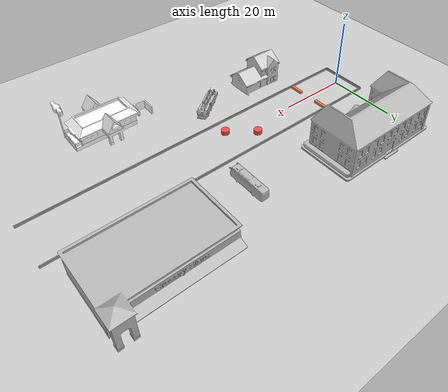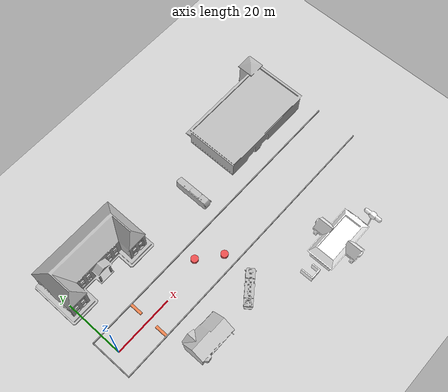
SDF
<sdf version="1.6">
 <world name="default">
  <light name="sun" type="directional">
   <pose>0 0 10 0 -0 0</pose>
   <diffuse>0.8 0.8 0.8 1</diffuse>
   <specular>0.2 0.2 0.2 1</specular>
   <attenuation>
    <range>1000</range>
    <constant>0.9</constant>
    <linear>0.01</linear>
    <quadratic>0.001</quadratic>
   </attenuation>
   <direction>-0.5 0.1 -0.9</direction>
   <spot><inner_angle>0</inner_angle><outer_angle>0</outer_angle><falloff>0</falloff></spot>
  </light>
  <model name="ground_plane">
   <static>1</static>
   <link name="link">
    <collision name="collision">
     <geometry><plane><normal>0 0 1</normal><size>100 100</size></plane></geometry>
     <surface>
      <contact><collide_bitmask>65535</collide_bitmask></contact>
      <friction><ode><mu>100</mu><mu2>50</mu2></ode></friction>
     </surface>
    </collision>
    <visual name="visual">
     <cast_shadows>0</cast_shadows>
     <geometry><plane><normal>0 0 1</normal><size>100 100</size></plane></geometry>
     <material>
      <script><uri>file://media/materials/scripts/gazebo.material</uri><name>Gazebo/Grey</name></script>
     </material>
    </visual>
   </link>
  </model>
  <gravity>0 0 -9.8</gravity>
  <magnetic_field>6e-06 2.3e-05 -4.2e-05</magnetic_field>
  <atmosphere type="adiabatic"/>
  <physics type="ode">
   <max_step_size>0.001</max_step_size>
   <real_time_factor>1</real_time_factor>
   <real_time_update_rate>1000</real_time_update_rate>
  </physics>
  <scene><ambient>0.4 0.4 0.4 1</ambient><background>0.7 0.7 0.7 1</background><shadows>1</shadows></scene>
  <spherical_coordinates>
   <surface_model>EARTH_WGS84</surface_model>
   <latitude_deg>0</latitude_deg>
   <longitude_deg>0</longitude_deg>
   <elevation>0</elevation>
   <heading_deg>0</heading_deg>
  </spherical_coordinates>
  <model name="long_C_wall">
   <pose>47.8689 0.014411 0 0 -0 0</pose>
   <link name="Wall_1">
    <collision name="Wall_1_Collision">
     <geometry><box><size>102.3 0.3 0.7</size></box></geometry>
     <pose>0 0 0.35 0 -0 0</pose>
    </collision>
    <visual name="Wall_1_Visual">
     <pose>0 0 0.35 0 -0 0</pose>
     <geometry><box><size>102.3 0.3 0.7</size></box></geometry>
     <material>
      <script><uri>file://media/materials/scripts/gazebo.material</uri><name>Gazebo/Grey</name></script>
      <ambient>1 1 1 1</ambient>
     </material>
     <meta><layer>0</layer></meta>
    </visual>
    <pose>0 -6.97997 0 0 -0 0.000392</pose>
   </link>
   <link name="Wall_3">
    <collision name="Wall_3_Collision">
     <geometry><box><size>102.3 0.3 0.7</size></box></geometry>
     <pose>0 0 0.35 0 -0 0</pose>
    </collision>
    <visual name="Wall_3_Visual">
     <pose>0 0 0.35 0 -0 0</pose>
     <geometry><box><size>102.3 0.3 0.7</size></box></geometry>
     <material>
      <script><uri>file://media/materials/scripts/gazebo.material</uri><name>Gazebo/Grey</name></script>
      <ambient>1 1 1 1</ambient>
     </material>
     <meta><layer>0</layer></meta>
    </visual>
    <pose>0 7.00003 0 0 -0 0</pose>
   </link>
   <link name="Wall_5">
    <collision name="Wall_5_Collision">
     <geometry><box><size>14.3 0.3 0.7</size></box></geometry>
     <pose>0 0 0.35 0 -0 0</pose>
    </collision>
    <visual name="Wall_5_Visual">
     <pose>0 0 0.35 0 -0 0</pose>
     <geometry><box><size>14.3 0.3 0.7</size></box></geometry>
     <material>
      <script><uri>file://media/materials/scripts/gazebo.material</uri><name>Gazebo/Grey</name></script>
      <ambient>1 1 1 1</ambient>
     </material>
     <meta><layer>0</layer></meta>
    </visual>
    <pose>-51 2.9e-05 0 0 -0 -1.5708</pose>
   </link>
   <static>1</static>
  </model>
  <model name="school">
   <static>1</static>
   <link name="link">
    <collision name="collision">
     <geometry><mesh><uri>model://school/meshes/school.dae</uri></mesh></geometry>
    </collision>
    <visual name="visual"><geometry><mesh><uri>model://school/meshes/school.dae</uri></mesh></geometry></visual>
   </link>
   <pose>13.3065 25.7209 0 0 -0 0</pose>
  </model>
  <model name="House 3">
   <static>1</static>
   <link name="link">
    <collision name="collision">
     <geometry><mesh><uri>model://house_3/meshes/house_3.dae</uri><scale>1.5 1.5 1.5</scale></mesh></geometry>
    </collision>
    <visual name="visual">
     <geometry><mesh><uri>model://house_3/meshes/house_3.dae</uri><scale>1.5 1.5 1.5</scale></mesh></geometry>
     <material>
      <script>
       <uri>model://house_3/materials/scripts</uri>
       <uri>model://house_3/materials/textures</uri>
       <uri>model://house_1/materials/textures</uri>
       <name>House_3/Diffuse</name>
      </script>
      <shader type="normal_map_tangent_space">
       <normal_map>model://house_1/materials/textures/House_1_Normal.png</normal_map>
      </shader>
     </material>
    </visual>
   </link>
   <pose>19.7246 -16.3875 0 0 -0 0</pose>
  </model>
  <model name="fire_truck">
   <static>1</static>
   <link name="link">
    <collision name="collision">
     <geometry>
      <mesh><scale>0.1 0.1 0.1</scale><uri>model://fire_truck/meshes/fire_truck.obj</uri></mesh>
     </geometry>
    </collision>
    <visual name="visual">
     <geometry>
      <mesh><scale>0.1 0.1 0.1</scale><uri>model://fire_truck/meshes/fire_truck.obj</uri></mesh>
     </geometry>
    </visual>
   </link>
   <pose>38.618 -15.0207 0 0 0 -0.927654</pose>
  </model>
  <model name="bus">
   <static>1</static>
   <link name="link">
    <collision name="collision">
     <geometry><mesh><scale>0.01 0.01 0.01</scale><uri>model://bus/meshes/bus.obj</uri></mesh></geometry>
    </collision>
    <visual name="visual">
     <geometry><mesh><scale>0.01 0.01 0.01</scale><uri>model://bus/meshes/bus.obj</uri></mesh></geometry>
    </visual>
   </link>
   <pose>49.59 16.9993 0 0 -0 0</pose>
  </model>
  <model name="grocery_store">
   <static>1</static>
   <link name="link">
    <collision name="collision">
     <pose>0 0 4.04605 0 -0 0</pose>
     <geometry><box><size>32.1985 17.5425 8.09209</size></box></geometry>
    </collision>
    <visual name="visual">
     <pose>0 -1.96155 0 0 -0 0</pose>
     <geometry><mesh><uri>model://grocery_store/meshes/grocery_store.dae</uri></mesh></geometry>
    </visual>
   </link>
   <pose>79.0083 21.331 0 0 -0 0</pose>
  </model>
  <model name="Fast Food">
   <static>1</static>
   <link name="link">
    <pose>0 0 3.15931 0 -0 0</pose>
    <collision name="collision">
     <geometry><mesh><scale>3 3 2</scale><uri>model://fast_food/meshes/fast_food.dae</uri></mesh></geometry>
    </collision>
    <visual name="visual">
     <geometry><mesh><scale>3 3 2</scale><uri>model://fast_food/meshes/fast_food.dae</uri></mesh></geometry>
     <material>
      <script>
       <uri>model://fast_food/materials/scripts</uri>
       <uri>model://fast_food/materials/textures</uri>
       <name>FastFood/Diffuse</name>
      </script>
      <shader type="normal_map_tangent_space"><normal_map>FastFood_Normal.png</normal_map></shader>
     </material>
    </visual>
   </link>
   <pose>66.3483 -25.4266 0 0 -0 0</pose>
  </model>
  <model name="unit_box_clone_clone_2_clone_clone_clone_1_clone">
   <link name="link">
    <inertial>
     <mass>1</mass>
     <inertia>
      <ixx>0.166667</ixx>
      <ixy>0</ixy>
      <ixz>0</ixz>
      <iyy>0.166667</iyy>
      <iyz>0</iyz>
      <izz>0.166667</izz>
     </inertia>
    </inertial>
    <pose>-0.876493 -0.77171 0.251824 0 -0 0</pose>
    <visual name="visual">
     <geometry><box><size>0.842545 4.00607 0.7</size></box></geometry>
     <material>
      <script><name>Gazebo/Grey</name><uri>file://media/materials/scripts/gazebo.material</uri></script>
      <shader type="pixel"><normal_map>__default__</normal_map></shader>
      <ambient>0.9 0.5 0.3 1</ambient>
      <diffuse>0.7 0.7 0.7 1</diffuse>
      <specular>0.01 0.01 0.01 1</specular>
      <emissive>0 0 0 1</emissive>
     </material>
    </visual>
    <collision name="collision">
     <geometry><box><size>0.832545 4 0.486131</size></box></geometry>
     <surface>
      <friction>
       <ode><mu>1</mu><mu2>1</mu2><fdir1>0 0 0</fdir1><slip1>0</slip1><slip2>0</slip2></ode>
       <torsional>
        <coefficient>1</coefficient>
        <patch_radius>0</patch_radius>
        <surface_radius>0</surface_radius>
        <use_patch_radius>1</use_patch_radius>
        <ode><slip>0</slip></ode>
       </torsional>
      </friction>
      <bounce><restitution_coefficient>0</restitution_coefficient><threshold>1e+06</threshold></bounce>
      <contact>
       <collide_without_contact>0</collide_without_contact>
       <collide_without_contact_bitmask>1</collide_without_contact_bitmask>
       <collide_bitmask>1</collide_bitmask>
       <ode>
        <soft_cfm>0</soft_cfm>
        <soft_erp>0.2</soft_erp>
        <kp>1e+13</kp>
        <kd>1</kd>
        <max_vel>0.01</max_vel>
        <min_depth>0</min_depth>
       </ode>
       <bullet>
        <split_impulse>1</split_impulse>
        <split_impulse_penetration_threshold>-0.01</split_impulse_penetration_threshold>
        <soft_cfm>0</soft_cfm>
        <soft_erp>0.2</soft_erp>
        <kp>1e+13</kp>
        <kd>1</kd>
       </bullet>
      </contact>
     </surface>
    </collision>
   </link>
   <static>0</static>
   <pose>12.9234 5.60243 -0 0 -0 0</pose>
  </model>
  <model name="unit_box_clone_clone_2_clone_clone_clone_1_clone_clone">
   <link name="link">
    <inertial>
     <mass>1</mass>
     <inertia>
      <ixx>0.166667</ixx>
      <ixy>0</ixy>
      <ixz>0</ixz>
      <iyy>0.166667</iyy>
      <iyz>0</iyz>
      <izz>0.166667</izz>
     </inertia>
    </inertial>
    <pose>-0.876493 -0.77171 0.251824 0 -0 0</pose>
    <visual name="visual">
     <geometry><box><size>0.842545 4.00607 0.7</size></box></geometry>
     <material>
      <script><name>Gazebo/Grey</name><uri>file://media/materials/scripts/gazebo.material</uri></script>
      <shader type="pixel"><normal_map>__default__</normal_map></shader>
      <ambient>0.9 0.5 0.3 1</ambient>
      <diffuse>0.7 0.7 0.7 1</diffuse>
      <specular>0.01 0.01 0.01 1</specular>
      <emissive>0 0 0 1</emissive>
     </material>
    </visual>
    <collision name="collision">
     <geometry><box><size>0.832545 4 0.486131</size></box></geometry>
     <surface>
      <friction>
       <ode><mu>1</mu><mu2>1</mu2><fdir1>0 0 0</fdir1><slip1>0</slip1><slip2>0</slip2></ode>
       <torsional>
        <coefficient>1</coefficient>
        <patch_radius>0</patch_radius>
        <surface_radius>0</surface_radius>
        <use_patch_radius>1</use_patch_radius>
        <ode><slip>0</slip></ode>
       </torsional>
      </friction>
      <bounce><restitution_coefficient>0</restitution_coefficient><threshold>1e+06</threshold></bounce>
      <contact>
       <collide_without_contact>0</collide_without_contact>
       <collide_without_contact_bitmask>1</collide_without_contact_bitmask>
       <collide_bitmask>1</collide_bitmask>
       <ode>
        <soft_cfm>0</soft_cfm>
        <soft_erp>0.2</soft_erp>
        <kp>1e+13</kp>
        <kd>1</kd>
        <max_vel>0.01</max_vel>
        <min_depth>0</min_depth>
       </ode>
       <bullet>
        <split_impulse>1</split_impulse>
        <split_impulse_penetration_threshold>-0.01</split_impulse_penetration_threshold>
        <soft_cfm>0</soft_cfm>
        <soft_erp>0.2</soft_erp>
        <kp>1e+13</kp>
        <kd>1</kd>
       </bullet>
      </contact>
     </surface>
    </collision>
   </link>
   <static>0</static>
   <pose>13.0901 -4.02738 0 0 -0 0</pose>
  </model>
  <model name="unit_cylinder">
   <link name="link">
    <inertial>
     <mass>1</mass>
     <inertia><ixx>0.145833</ixx><ixy>0</ixy><ixz>0</ixz><iyy>0.145833</iyy><iyz>0</iyz><izz>0.125</izz></inertia>
    </inertial>
    <visual name="visual">
     <geometry><cylinder><radius>1.2</radius><length>2.24323</length></cylinder></geometry>
     <material>
      <script><name>Gazebo/Grey</name><uri>file://media/materials/scripts/gazebo.material</uri></script>
      <shader type="pixel"><normal_map>__default__</normal_map></shader>
      <ambient>0.9 0.3 0.3 1</ambient>
      <diffuse>0.7 0.7 0.7 1</diffuse>
      <specular>0.01 0.01 0.01 1</specular>
      <emissive>0 0 0 1</emissive>
     </material>
    </visual>
    <collision name="collision">
     <geometry><cylinder><radius>1.2</radius><length>2.24323</length></cylinder></geometry>
     <surface>
      <friction>
       <ode><mu>1</mu><mu2>1</mu2><fdir1>0 0 0</fdir1><slip1>0</slip1><slip2>0</slip2></ode>
       <torsional>
        <coefficient>1</coefficient>
        <patch_radius>0</patch_radius>
        <surface_radius>0</surface_radius>
        <use_patch_radius>1</use_patch_radius>
        <ode><slip>0</slip></ode>
       </torsional>
      </friction>
      <bounce><restitution_coefficient>0</restitution_coefficient><threshold>1e+06</threshold></bounce>
      <contact>
       <collide_without_contact>0</collide_without_contact>
       <collide_without_contact_bitmask>1</collide_without_contact_bitmask>
       <collide_bitmask>1</collide_bitmask>
       <ode>
        <soft_cfm>0</soft_cfm>
        <soft_erp>0.2</soft_erp>
        <kp>1e+13</kp>
        <kd>1</kd>
        <max_vel>0.01</max_vel>
        <min_depth>0</min_depth>
       </ode>
       <bullet>
        <split_impulse>1</split_impulse>
        <split_impulse_penetration_threshold>-0.01</split_impulse_penetration_threshold>
        <soft_cfm>0</soft_cfm>
        <soft_erp>0.2</soft_erp>
        <kp>1e+13</kp>
        <kd>1</kd>
       </bullet>
      </contact>
     </surface>
    </collision>
   </link>
   <static>0</static>
   <pose>34.3732 2.6504 0 0 -0 0</pose>
  </model>
  <model name="unit_cylinder_clone">
   <link name="link">
    <inertial>
     <mass>1</mass>
     <inertia><ixx>0.145833</ixx><ixy>0</ixy><ixz>0</ixz><iyy>0.145833</iyy><iyz>0</iyz><izz>0.125</izz></inertia>
    </inertial>
    <visual name="visual">
     <geometry><cylinder><radius>1.2</radius><length>2.24323</length></cylinder></geometry>
     <material>
      <script><name>Gazebo/Grey</name><uri>file://media/materials/scripts/gazebo.material</uri></script>
      <shader type="pixel"><normal_map>__default__</normal_map></shader>
      <ambient>0.9 0.3 0.3 1</ambient>
      <diffuse>0.7 0.7 0.7 1</diffuse>
      <specular>0.01 0.01 0.01 1</specular>
      <emissive>0 0 0 1</emissive>
     </material>
    </visual>
    <collision name="collision">
     <geometry><cylinder><radius>1.2</radius><length>2.24323</length></cylinder></geometry>
     <surface>
      <friction>
       <ode><mu>1</mu><mu2>1</mu2><fdir1>0 0 0</fdir1><slip1>0</slip1><slip2>0</slip2></ode>
       <torsional>
        <coefficient>1</coefficient>
        <patch_radius>0</patch_radius>
        <surface_radius>0</surface_radius>
        <use_patch_radius>1</use_patch_radius>
        <ode><slip>0</slip></ode>
       </torsional>
      </friction>
      <bounce><restitution_coefficient>0</restitution_coefficient><threshold>1e+06</threshold></bounce>
      <contact>
       <collide_without_contact>0</collide_without_contact>
       <collide_without_contact_bitmask>1</collide_without_contact_bitmask>
       <collide_bitmask>1</collide_bitmask>
       <ode>
        <soft_cfm>0</soft_cfm>
        <soft_erp>0.2</soft_erp>
        <kp>1e+13</kp>
        <kd>1</kd>
        <max_vel>0.01</max_vel>
        <min_depth>0</min_depth>
       </ode>
       <bullet>
        <split_impulse>1</split_impulse>
        <split_impulse_penetration_threshold>-0.01</split_impulse_penetration_threshold>
        <soft_cfm>0</soft_cfm>
        <soft_erp>0.2</soft_erp>
        <kp>1e+13</kp>
        <kd>1</kd>
       </bullet>
      </contact>
     </surface>
    </collision>
   </link>
   <static>0</static>
   <pose>41.4225 -2.88721 0 0 -0 0</pose>
  </model>
 </world>
</sdf>
